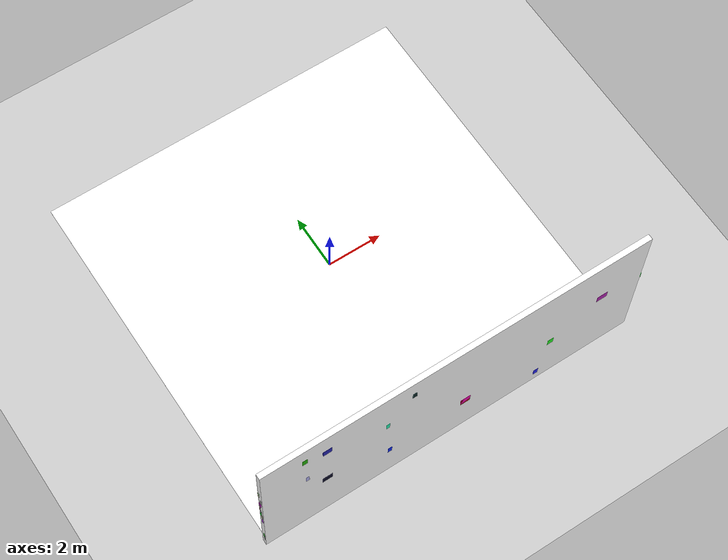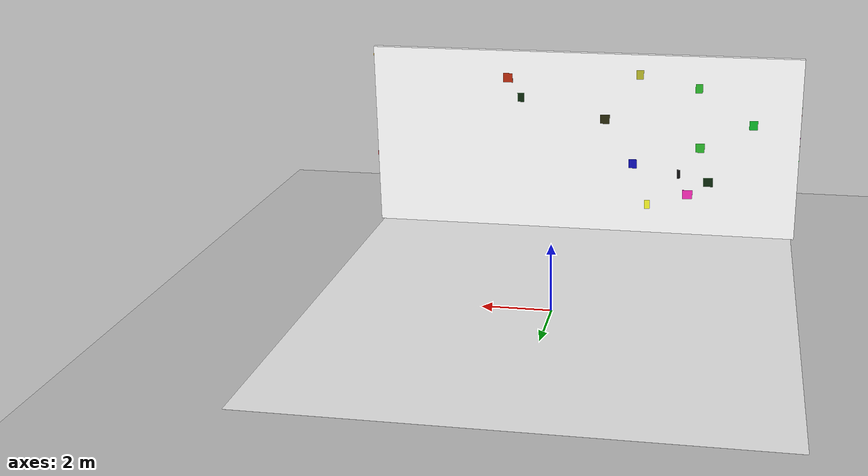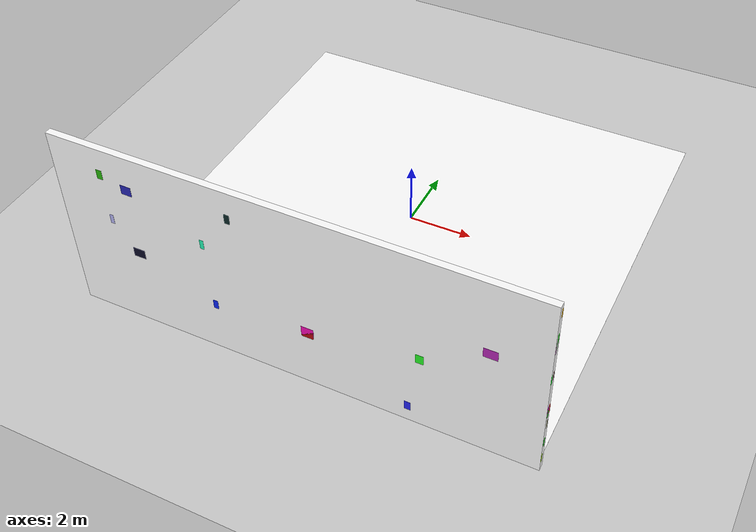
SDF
<sdf version="1.9">
 <world name="default">
  <model name="ground_plane">
   <static>true</static>
   <link name="link">
    <collision name="collision">
     <geometry><plane><normal>0 0 1</normal><size>1 1</size></plane></geometry>
    </collision>
    <visual name="visual">
     <geometry><plane><normal>0 0 1</normal><size>500 500</size></plane></geometry>
     <material>
      <ambient>0.8 0.8 0.8 1</ambient>
      <diffuse>0.8 0.8 0.8 1</diffuse>
      <specular>0.8 0.8 0.8 1</specular>
     </material>
    </visual>
    <inertial>
     <mass>1</mass>
     <inertia><ixx>1</ixx><ixy>0</ixy><ixz>0</ixz><iyy>1</iyy><iyz>0</iyz><izz>1</izz></inertia>
    </inertial>
   </link>
  </model>
  <model name="wall_south">
   <static>true</static>
   <pose>0 -7 3 0 0 0</pose>
   <link name="structure">
    <collision name="collision"><geometry><box><size>14 0.2 6</size></box></geometry></collision>
    <visual name="surface">
     <geometry><box><size>14 0.2 6</size></box></geometry>
     <material>
      <ambient>1 1 1 1</ambient>
      <diffuse>1 1 1 1</diffuse>
      <pbr>
       <metal>
        <albedo_map>model://warehouse_textures/materials/textures/wall_south.png</albedo_map>
        <metalness>0</metalness>
        <roughness>1</roughness>
       </metal>
      </pbr>
     </material>
    </visual>
    <visual name="feature_0_0">
     <pose>-7.002 0.05013029429316511 1.3344337788280045 0 0 0</pose>
     <geometry><box><size>0.004 0.06999999999999999 0.3</size></box></geometry>
     <material><ambient>0.7 0.95 0.7 1</ambient><diffuse>0.7 0.95 0.7 1</diffuse></material>
    </visual>
    <visual name="feature_0_1">
     <pose>-7.002 0.053626879045490364 0.5126375350169363 0 0 0</pose>
     <geometry><box><size>0.004 0.06999999999999999 0.3</size></box></geometry>
     <material><ambient>0.7 0.15 0.7 1</ambient><diffuse>0.7 0.15 0.7 1</diffuse></material>
    </visual>
    <visual name="feature_0_2">
     <pose>-7.002 -0.014323555653300915 0.5184565482892922 0 0 0</pose>
     <geometry><box><size>0.004 0.06999999999999999 0.3</size></box></geometry>
     <material><ambient>0.95 0.15 0.95 1</ambient><diffuse>0.95 0.15 0.95 1</diffuse></material>
    </visual>
    <visual name="feature_0_3">
     <pose>-7.002 0.07942451934433421 1.2721664787519549 0 0 0</pose>
     <geometry><box><size>0.004 0.06999999999999999 0.3</size></box></geometry>
     <material><ambient>0.95 0.7 0.7 1</ambient><diffuse>0.95 0.7 0.7 1</diffuse></material>
    </visual>
    <visual name="feature_0_4">
     <pose>-7.002 -0.031241482324715887 0.8213783852477801 0 0 0</pose>
     <geometry><box><size>0.004 0.06999999999999999 0.3</size></box></geometry>
     <material><ambient>0.7 0.7 0.7 1</ambient><diffuse>0.7 0.7 0.7 1</diffuse></material>
    </visual>
    <visual name="feature_0_5">
     <pose>-7.002 0.033509999577640975 -0.36077187990043225 0 0 0</pose>
     <geometry><box><size>0.004 0.06999999999999999 0.3</size></box></geometry>
     <material><ambient>0.04 0.95 0.15 1</ambient><diffuse>0.04 0.95 0.15 1</diffuse></material>
    </visual>
    <visual name="feature_0_6">
     <pose>-7.002 -0.02649520504299914 -2.222417838808128 0 0 0</pose>
     <geometry><box><size>0.004 0.06999999999999999 0.3</size></box></geometry>
     <material><ambient>0.15 0.7 0.15 1</ambient><diffuse>0.15 0.7 0.15 1</diffuse></material>
    </visual>
    <visual name="feature_0_7">
     <pose>-7.002 0.006326238674518994 -0.21376637762866313 0 0 0</pose>
     <geometry><box><size>0.004 0.06999999999999999 0.3</size></box></geometry>
     <material><ambient>0.15 0.15 0.15 1</ambient><diffuse>0.15 0.15 0.15 1</diffuse></material>
    </visual>
    <visual name="feature_0_8">
     <pose>-7.002 -0.02319102826291799 -0.5412880793490009 0 0 0</pose>
     <geometry><box><size>0.004 0.06999999999999999 0.3</size></box></geometry>
     <material><ambient>0.15 0.15 0.04 1</ambient><diffuse>0.15 0.15 0.04 1</diffuse></material>
    </visual>
    <visual name="feature_0_9">
     <pose>-7.002 -0.05281084595567803 -2.4427364049877722 0 0 0</pose>
     <geometry><box><size>0.004 0.06999999999999999 0.3</size></box></geometry>
     <material><ambient>0.04 0.04 0.04 1</ambient><diffuse>0.04 0.04 0.04 1</diffuse></material>
    </visual>
    <visual name="feature_0_10">
     <pose>-7.002 -0.02206726810736683 -0.8268935963826314 0 0 0</pose>
     <geometry><box><size>0.004 0.06999999999999999 0.3</size></box></geometry>
     <material><ambient>0.7 0.15 0.95 1</ambient><diffuse>0.7 0.15 0.95 1</diffuse></material>
    </visual>
    <visual name="feature_0_11">
     <pose>-7.002 0.06690281060180585 0.13786475028770706 0 0 0</pose>
     <geometry><box><size>0.004 0.06999999999999999 0.3</size></box></geometry>
     <material><ambient>0.15 0.04 0.04 1</ambient><diffuse>0.15 0.04 0.04 1</diffuse></material>
    </visual>
    <visual name="feature_1_0">
     <pose>7.002 0.06450336411470818 2.68545447530506 0 0 0</pose>
     <geometry><box><size>0.004 0.06999999999999999 0.3</size></box></geometry>
     <material><ambient>0.95 0.7 0.04 1</ambient><diffuse>0.95 0.7 0.04 1</diffuse></material>
    </visual>
    <visual name="feature_1_1">
     <pose>7.002 -0.08260006728813388 0.5347834316504732 0 0 0</pose>
     <geometry><box><size>0.004 0.06999999999999999 0.3</size></box></geometry>
     <material><ambient>0.04 0.95 0.15 1</ambient><diffuse>0.04 0.95 0.15 1</diffuse></material>
    </visual>
    <visual name="feature_1_2">
     <pose>7.002 -0.011583482624690819 -1.9228539210441242 0 0 0</pose>
     <geometry><box><size>0.004 0.06999999999999999 0.3</size></box></geometry>
     <material><ambient>0.15 0.95 0.15 1</ambient><diffuse>0.15 0.95 0.15 1</diffuse></material>
    </visual>
    <visual name="feature_1_3">
     <pose>7.002 -0.013183834536215355 -0.7871604675557424 0 0 0</pose>
     <geometry><box><size>0.004 0.06999999999999999 0.3</size></box></geometry>
     <material><ambient>0.15 0.95 0.15 1</ambient><diffuse>0.15 0.95 0.15 1</diffuse></material>
    </visual>
    <visual name="feature_1_4">
     <pose>7.002 0.07380699173682594 -0.664364832384468 0 0 0</pose>
     <geometry><box><size>0.004 0.06999999999999999 0.3</size></box></geometry>
     <material><ambient>0.95 0.15 0.15 1</ambient><diffuse>0.95 0.15 0.15 1</diffuse></material>
    </visual>
    <visual name="feature_1_5">
     <pose>7.002 -0.048694230574671815 1.5630788077055522 0 0 0</pose>
     <geometry><box><size>0.004 0.06999999999999999 0.3</size></box></geometry>
     <material><ambient>0.95 0.7 0.95 1</ambient><diffuse>0.95 0.7 0.95 1</diffuse></material>
    </visual>
    <visual name="feature_1_6">
     <pose>7.002 0.028389967478109568 1.868636731459282 0 0 0</pose>
     <geometry><box><size>0.004 0.06999999999999999 0.3</size></box></geometry>
     <material><ambient>0.04 0.95 0.04 1</ambient><diffuse>0.04 0.95 0.04 1</diffuse></material>
    </visual>
    <visual name="feature_1_7">
     <pose>7.002 -0.01131909396849029 1.6887105902124375 0 0 0</pose>
     <geometry><box><size>0.004 0.06999999999999999 0.3</size></box></geometry>
     <material><ambient>0.7 0.95 0.7 1</ambient><diffuse>0.7 0.95 0.7 1</diffuse></material>
    </visual>
    <visual name="feature_1_8">
     <pose>7.002 -0.05081834634932061 -2.52169160086991 0 0 0</pose>
     <geometry><box><size>0.004 0.06999999999999999 0.3</size></box></geometry>
     <material><ambient>0.7 0.95 0.15 1</ambient><diffuse>0.7 0.95 0.15 1</diffuse></material>
    </visual>
    <visual name="feature_1_9">
     <pose>7.002 -0.034713704641175 -0.6536029513765729 0 0 0</pose>
     <geometry><box><size>0.004 0.06999999999999999 0.3</size></box></geometry>
     <material><ambient>0.95 0.15 0.95 1</ambient><diffuse>0.95 0.15 0.95 1</diffuse></material>
    </visual>
    <visual name="feature_1_10">
     <pose>7.002 0.028761669940748094 -1.226467510396191 0 0 0</pose>
     <geometry><box><size>0.004 0.06999999999999999 0.3</size></box></geometry>
     <material><ambient>0.15 0.15 0.04 1</ambient><diffuse>0.15 0.15 0.04 1</diffuse></material>
    </visual>
    <visual name="feature_1_11">
     <pose>7.002 0.03662493447125069 0.5929723749907376 0 0 0</pose>
     <geometry><box><size>0.004 0.06999999999999999 0.3</size></box></geometry>
     <material><ambient>0.15 0.04 0.04 1</ambient><diffuse>0.15 0.04 0.04 1</diffuse></material>
    </visual>
    <visual name="feature_2_0">
     <pose>-2.4029796759381647 -0.10200000000000001 -1.271434456737637 0 0 0</pose>
     <geometry><box><size>0.15301972618142512 0.004 0.3</size></box></geometry>
     <material><ambient>0.04 0.15 0.95 1</ambient><diffuse>0.04 0.15 0.95 1</diffuse></material>
    </visual>
    <visual name="feature_2_1">
     <pose>-4.704728112849553 -0.10200000000000001 1.8899872533510402 0 0 0</pose>
     <geometry><box><size>0.3194365047836309 0.004 0.3</size></box></geometry>
     <material><ambient>0.15 0.15 0.7 1</ambient><diffuse>0.15 0.15 0.7 1</diffuse></material>
    </visual>
    <visual name="feature_2_2">
     <pose>-2.5403862817549006 -0.10200000000000001 0.8930933905496885 0 0 0</pose>
     <geometry><box><size>0.1221163689964482 0.004 0.3</size></box></geometry>
     <material><ambient>0.15 0.95 0.7 1</ambient><diffuse>0.15 0.95 0.7 1</diffuse></material>
    </visual>
    <visual name="feature_2_3">
     <pose>-1.6306037418121857 -0.10200000000000001 2.1312175730096907 0 0 0</pose>
     <geometry><box><size>0.1594067344939466 0.004 0.3</size></box></geometry>
     <material><ambient>0.04 0.15 0.15 1</ambient><diffuse>0.04 0.15 0.15 1</diffuse></material>
    </visual>
    <visual name="feature_2_4">
     <pose>-4.709416479293927 -0.10200000000000001 -0.3308416464242767 0 0 0</pose>
     <geometry><box><size>0.36822410486320134 0.004 0.3</size></box></geometry>
     <material><ambient>0.04 0.04 0.15 1</ambient><diffuse>0.04 0.04 0.15 1</diffuse></material>
    </visual>
    <visual name="feature_2_5">
     <pose>-5.481536256598476 -0.10200000000000001 2.1508934084905516 0 0 0</pose>
     <geometry><box><size>0.1743473653715774 0.004 0.3</size></box></geometry>
     <material><ambient>0.15 0.7 0.04 1</ambient><diffuse>0.15 0.7 0.04 1</diffuse></material>
    </visual>
    <visual name="feature_2_6">
     <pose>3.639597669959689 -0.10200000000000001 -0.44284286626378044 0 0 0</pose>
     <geometry><box><size>0.22242148415727694 0.004 0.3</size></box></geometry>
     <material><ambient>0.15 0.95 0.15 1</ambient><diffuse>0.15 0.95 0.15 1</diffuse></material>
    </visual>
    <visual name="feature_2_7">
     <pose>0.4271078491047673 -0.10200000000000001 -1.0628347992002252 0 0 0</pose>
     <geometry><box><size>0.3516741174449177 0.004 0.3</size></box></geometry>
     <material><ambient>0.7 0.04 0.04 1</ambient><diffuse>0.7 0.04 0.04 1</diffuse></material>
    </visual>
    <visual name="feature_2_8">
     <pose>0.42920601847937156 -0.10200000000000001 -1.0008616115868496 0 0 0</pose>
     <geometry><box><size>0.36893222837835393 0.004 0.3</size></box></geometry>
     <material><ambient>0.95 0.04 0.7 1</ambient><diffuse>0.95 0.04 0.7 1</diffuse></material>
    </visual>
    <visual name="feature_2_9">
     <pose>3.303983123943101 -0.10200000000000001 -2.435756244164814 0 0 0</pose>
     <geometry><box><size>0.18238401828457473 0.004 0.3</size></box></geometry>
     <material><ambient>0.15 0.15 0.95 1</ambient><diffuse>0.15 0.15 0.95 1</diffuse></material>
    </visual>
    <visual name="feature_2_10">
     <pose>5.480055527675781 -0.10200000000000001 0.688664998123341 0 0 0</pose>
     <geometry><box><size>0.39323818227977214 0.004 0.3</size></box></geometry>
     <material><ambient>0.7 0.15 0.7 1</ambient><diffuse>0.7 0.15 0.7 1</diffuse></material>
    </visual>
    <visual name="feature_2_11">
     <pose>-5.404282146829244 -0.10200000000000001 0.6460780768385304 0 0 0</pose>
     <geometry><box><size>0.11832070714311219 0.004 0.3</size></box></geometry>
     <material><ambient>0.7 0.7 0.95 1</ambient><diffuse>0.7 0.7 0.95 1</diffuse></material>
    </visual>
    <visual name="feature_3_0">
     <pose>-3.469024428247825 0.10200000000000001 -1.620479554302231 0 0 0</pose>
     <geometry><box><size>0.32611919888681085 0.004 0.3</size></box></geometry>
     <material><ambient>0.95 0.15 0.7 1</ambient><diffuse>0.95 0.15 0.7 1</diffuse></material>
    </visual>
    <visual name="feature_3_1">
     <pose>2.496609554513557 0.10200000000000001 2.102235758403199 0 0 0</pose>
     <geometry><box><size>0.3041412456497423 0.004 0.3</size></box></geometry>
     <material><ambient>0.7 0.15 0.04 1</ambient><diffuse>0.7 0.15 0.04 1</diffuse></material>
    </visual>
    <visual name="feature_3_2">
     <pose>-1.6444254859621408 0.10200000000000001 -0.642777461246741 0 0 0</pose>
     <geometry><box><size>0.26782309748555577 0.004 0.3</size></box></geometry>
     <material><ambient>0.04 0.04 0.7 1</ambient><diffuse>0.04 0.04 0.7 1</diffuse></material>
    </visual>
    <visual name="feature_3_3">
     <pose>2.0794254198614457 0.10200000000000001 1.465026459522334 0 0 0</pose>
     <geometry><box><size>0.2182699326110329 0.004 0.3</size></box></geometry>
     <material><ambient>0.04 0.15 0.04 1</ambient><diffuse>0.04 0.15 0.04 1</diffuse></material>
    </visual>
    <visual name="feature_3_4">
     <pose>-4.1313465546691575 0.10200000000000001 -1.164722269733362 0 0 0</pose>
     <geometry><box><size>0.3163317013369229 0.004 0.3</size></box></geometry>
     <material><ambient>0.04 0.15 0.04 1</ambient><diffuse>0.04 0.15 0.04 1</diffuse></material>
    </visual>
    <visual name="feature_3_5">
     <pose>-3.155975064294834 0.10200000000000001 -0.9271056754248004 0 0 0</pose>
     <geometry><box><size>0.10317137432118983 0.004 0.3</size></box></geometry>
     <material><ambient>0.04 0.04 0.04 1</ambient><diffuse>0.04 0.04 0.04 1</diffuse></material>
    </visual>
    <visual name="feature_3_6">
     <pose>-3.7281642928547623 0.10200000000000001 1.9566934200549762 0 0 0</pose>
     <geometry><box><size>0.22802913965751254 0.004 0.3</size></box></geometry>
     <material><ambient>0.15 0.7 0.15 1</ambient><diffuse>0.15 0.7 0.15 1</diffuse></material>
    </visual>
    <visual name="feature_3_7">
     <pose>-1.8231379939122307 0.10200000000000001 2.349784061363769 0 0 0</pose>
     <geometry><box><size>0.23568298246755162 0.004 0.3</size></box></geometry>
     <material><ambient>0.7 0.7 0.15 1</ambient><diffuse>0.7 0.7 0.15 1</diffuse></material>
    </visual>
    <visual name="feature_3_8">
     <pose>-2.1495540054644997 0.10200000000000001 -2.029957619902869 0 0 0</pose>
     <geometry><box><size>0.17637276640077826 0.004 0.3</size></box></geometry>
     <material><ambient>0.95 0.95 0.15 1</ambient><diffuse>0.95 0.95 0.15 1</diffuse></material>
    </visual>
    <visual name="feature_3_9">
     <pose>-3.8293673647596727 0.10200000000000001 -0.013000887557255592 0 0 0</pose>
     <geometry><box><size>0.2837734355302372 0.004 0.3</size></box></geometry>
     <material><ambient>0.15 0.7 0.15 1</ambient><diffuse>0.15 0.7 0.15 1</diffuse></material>
    </visual>
    <visual name="feature_3_10">
     <pose>-0.7074972291922821 0.10200000000000001 0.8315936040870096 0 0 0</pose>
     <geometry><box><size>0.3034151856676342 0.004 0.3</size></box></geometry>
     <material><ambient>0.15 0.15 0.04 1</ambient><diffuse>0.15 0.15 0.04 1</diffuse></material>
    </visual>
    <visual name="feature_3_11">
     <pose>-5.507283317989444 0.10200000000000001 0.8140772229232067 0 0 0</pose>
     <geometry><box><size>0.2665901325083502 0.004 0.3</size></box></geometry>
     <material><ambient>0.04 0.7 0.15 1</ambient><diffuse>0.04 0.7 0.15 1</diffuse></material>
    </visual>
   </link>
  </model>
  <model name="warehouse_textured_floor">
   <static>true</static>
   <link name="paint">
    <visual name="floor_surface">
     <pose>0 0 0.001 0 0 0</pose>
     <geometry><box><size>13.8 13.8 0.002</size></box></geometry>
     <material>
      <ambient>1 1 1 1</ambient>
      <diffuse>1 1 1 1</diffuse>
      <pbr>
       <metal>
        <albedo_map>model://warehouse_textures/materials/textures/floor.png</albedo_map>
        <metalness>0</metalness>
        <roughness>1</roughness>
       </metal>
      </pbr>
     </material>
    </visual>
   </link>
  </model>
 </world>
</sdf>
